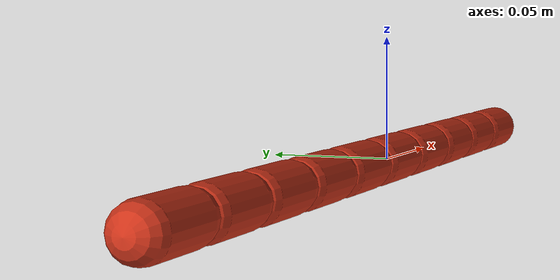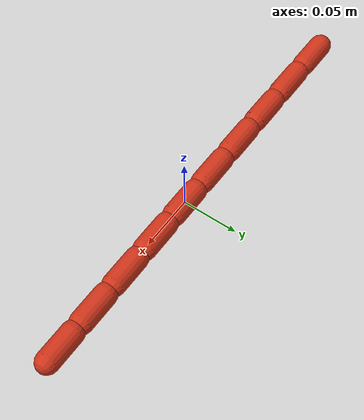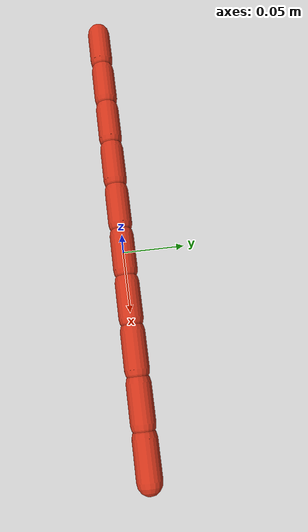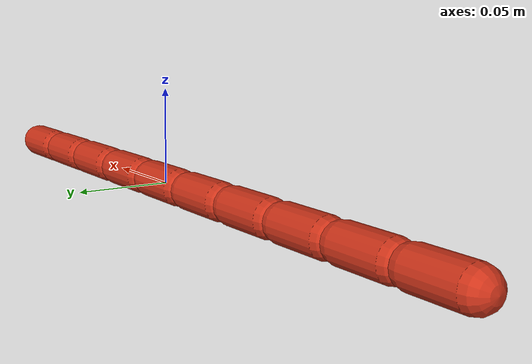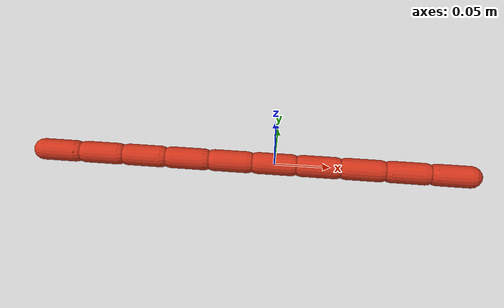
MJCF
<mujoco model="rope">
    <compiler angle="radian"/>
    <size njmax="500" nconmax="100"/>
    <worldbody>
        <body name="CB0" pos="-0.2 0 0">
            <inertial pos="0 0 0" quat="0.707107 0 0.707107 0" mass="0.0136136" diaginertia="2.52375e-06 2.52375e-06 6.38791e-07"/>
            <geom name="CG0" size="0.01 0.015" quat="0.707107 0 0.707107 0" type="capsule" rgba="0.8 0.2 0.1 1"/>
            <body name="CB1" pos="0.04 0 0">
                <inertial pos="0 0 0" quat="0.707107 0 0.707107 0" mass="0.0136136" diaginertia="2.52375e-06 2.52375e-06 6.38791e-07"/>
                <joint name="CJ0_1" pos="-0.02 0 0" axis="0 1 0" group="3" damping="0.005"/>
                <joint name="CJ1_1" pos="-0.02 0 0" axis="0 0 1" group="3" damping="0.005"/>
                <geom name="CG1" size="0.01 0.015" quat="0.707107 0 0.707107 0" type="capsule" rgba="0.8 0.2 0.1 1"/>
                <body name="CB2" pos="0.04 0 0">
                    <inertial pos="0 0 0" quat="0.707107 0 0.707107 0" mass="0.0136136" diaginertia="2.52375e-06 2.52375e-06 6.38791e-07"/>
                    <joint name="CJ0_2" pos="-0.02 0 0" axis="0 1 0" group="3" damping="0.005"/>
                    <joint name="CJ1_2" pos="-0.02 0 0" axis="0 0 1" group="3" damping="0.005"/>
                    <geom name="CG2" size="0.01 0.015" quat="0.707107 0 0.707107 0" type="capsule" rgba="0.8 0.2 0.1 1"/>
                    <body name="CB3" pos="0.04 0 0">
                        <inertial pos="0 0 0" quat="0.707107 0 0.707107 0" mass="0.0136136" diaginertia="2.52375e-06 2.52375e-06 6.38791e-07"/>
                        <joint name="CJ0_3" pos="-0.02 0 0" axis="0 1 0" group="3" damping="0.005"/>
                        <joint name="CJ1_3" pos="-0.02 0 0" axis="0 0 1" group="3" damping="0.005"/>
                        <geom name="CG3" size="0.01 0.015" quat="0.707107 0 0.707107 0" type="capsule" rgba="0.8 0.2 0.1 1"/>
                        <body name="CB4" pos="0.04 0 0">
                            <inertial pos="0 0 0" quat="0.707107 0 0.707107 0" mass="0.0136136" diaginertia="2.52375e-06 2.52375e-06 6.38791e-07"/>
                            <joint name="CJ0_4" pos="-0.02 0 0" axis="0 1 0" group="3" damping="0.005"/>
                            <joint name="CJ1_4" pos="-0.02 0 0" axis="0 0 1" group="3" damping="0.005"/>
                            <geom name="CG4" size="0.01 0.015" quat="0.707107 0 0.707107 0" type="capsule" rgba="0.8 0.2 0.1 1"/>
                            <body name="CB5" pos="0.04 0 0">
                                <inertial pos="0 0 0" quat="0.707107 0 0.707107 0" mass="0.0136136" diaginertia="2.52375e-06 2.52375e-06 6.38791e-07"/>
                                <joint name="CJ0_5" pos="-0.02 0 0" axis="0 1 0" group="3" damping="0.005"/>
                                <joint name="CJ1_5" pos="-0.02 0 0" axis="0 0 1" group="3" damping="0.005"/>
                                <geom name="CG5" size="0.01 0.015" quat="0.707107 0 0.707107 0" type="capsule" rgba="0.8 0.2 0.1 1"/>
                                <body name="CB6" pos="0.04 0 0">
                                    <inertial pos="0 0 0" quat="0.707107 0 0.707107 0" mass="0.0136136" diaginertia="2.52375e-06 2.52375e-06 6.38791e-07"/>
                                    <joint name="CJ0_6" pos="-0.02 0 0" axis="0 1 0" group="3" damping="0.005"/>
                                    <joint name="CJ1_6" pos="-0.02 0 0" axis="0 0 1" group="3" damping="0.005"/>
                                    <geom name="CG6" size="0.01 0.015" quat="0.707107 0 0.707107 0" type="capsule" rgba="0.8 0.2 0.1 1"/>
                                    <body name="CB7" pos="0.04 0 0">
                                        <inertial pos="0 0 0" quat="0.707107 0 0.707107 0" mass="0.0136136" diaginertia="2.52375e-06 2.52375e-06 6.38791e-07"/>
                                        <joint name="CJ0_7" pos="-0.02 0 0" axis="0 1 0" group="3" damping="0.005"/>
                                        <joint name="CJ1_7" pos="-0.02 0 0" axis="0 0 1" group="3" damping="0.005"/>
                                        <geom name="CG7" size="0.01 0.015" quat="0.707107 0 0.707107 0" type="capsule" rgba="0.8 0.2 0.1 1"/>
                                        <body name="CB8" pos="0.04 0 0">
                                            <inertial pos="0 0 0" quat="0.707107 0 0.707107 0" mass="0.0136136" diaginertia="2.52375e-06 2.52375e-06 6.38791e-07"/>
                                            <joint name="CJ0_8" pos="-0.02 0 0" axis="0 1 0" group="3" damping="0.005"/>
                                            <joint name="CJ1_8" pos="-0.02 0 0" axis="0 0 1" group="3" damping="0.005"/>
                                            <geom name="CG8" size="0.01 0.015" quat="0.707107 0 0.707107 0" type="capsule" rgba="0.8 0.2 0.1 1"/>
                                            <body name="CB9" pos="0.04 0 0">
                                                <inertial pos="0 0 0" quat="0.707107 0 0.707107 0" mass="0.0136136" diaginertia="2.52375e-06 2.52375e-06 6.38791e-07"/>
                                                <joint name="CJ0_9" pos="-0.02 0 0" axis="0 1 0" group="3" damping="0.005"/>
                                                <joint name="CJ1_9" pos="-0.02 0 0" axis="0 0 1" group="3" damping="0.005"/>
                                                <geom name="CG9" size="0.01 0.015" quat="0.707107 0 0.707107 0" type="capsule" rgba="0.8 0.2 0.1 1"/>
                                            </body>
                                        </body>
                                    </body>
                                </body>
                            </body>
                        </body>
                    </body>
                </body>
            </body>
        </body>
    </worldbody>
</mujoco>
